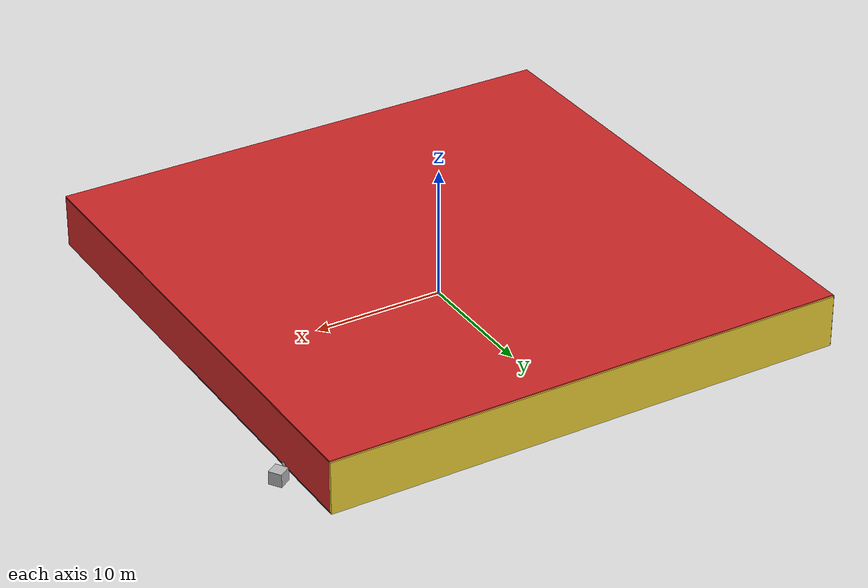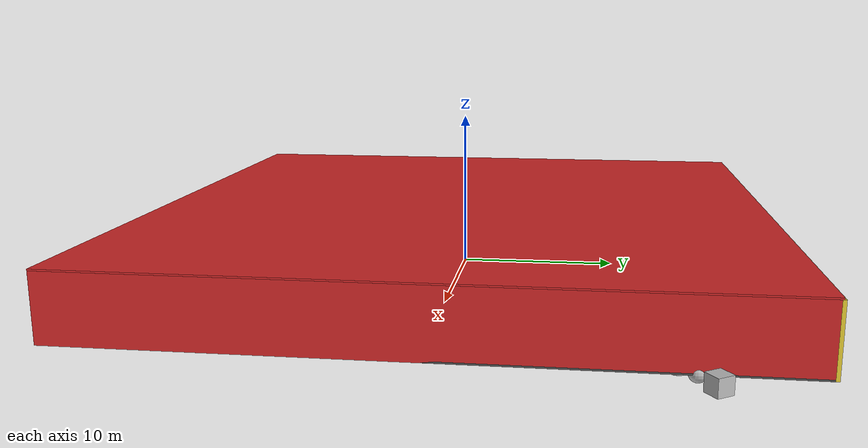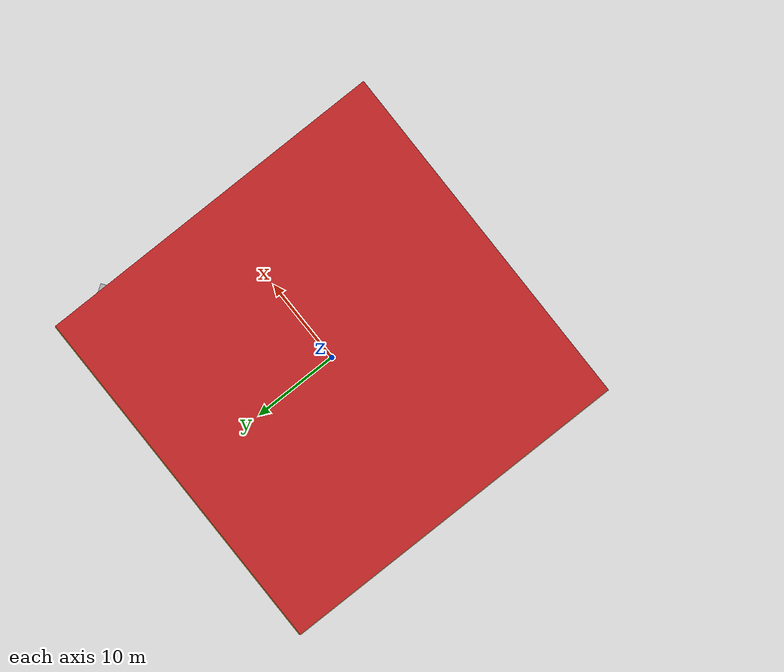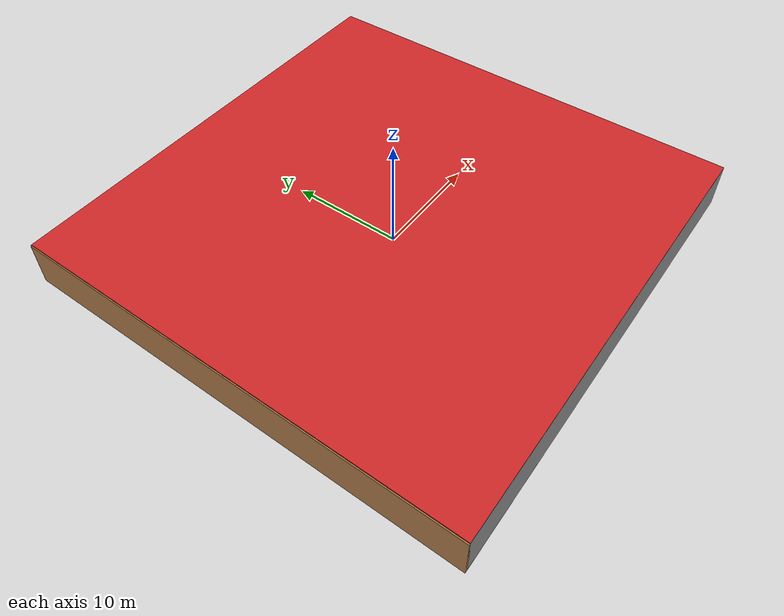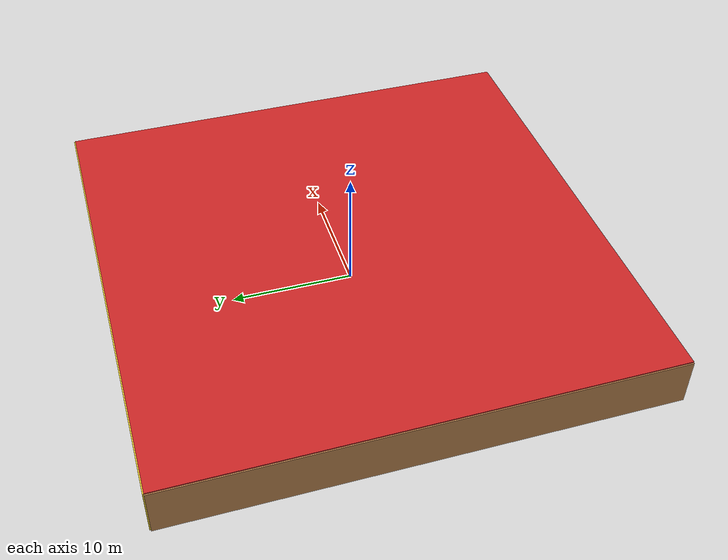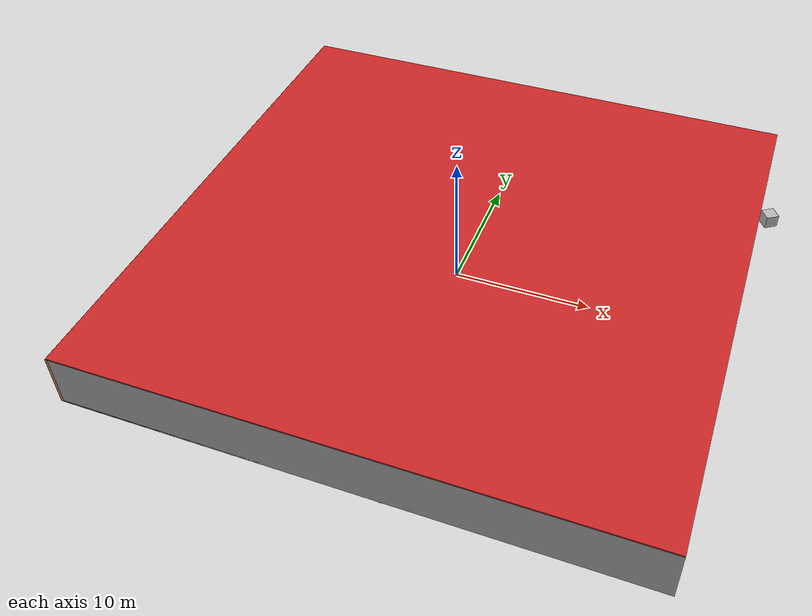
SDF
<sdf version="1.4">
 <world name="default">
  <physics type="ode">
   <max_step_size>0.001</max_step_size>
   <real_time_factor>1</real_time_factor>
   <real_time_update_rate>1000</real_time_update_rate>
   <gravity>0 0 -9.8</gravity>
  </physics>
  <scene><ambient>0.4 0.4 0.4 1</ambient><background>0.7 0.7 0.7 1</background><shadows>1</shadows></scene>
  <model name="Surrounding">
   <static>1</static>
   <link name="Ceiling">
    <collision name="Ceiling_Collision"><geometry><box><size>40 40 0.1</size></box></geometry></collision>
    <visual name="Ceiling_Visual">
     <geometry><box><size>40 40 0.1</size></box></geometry>
     <material>
      <script><uri>file://media/materials/scripts/gazebo.material</uri><name>Gazebo/Red</name></script>
     </material>
    </visual>
    <pose>0 0 4.05 0 0 0</pose>
   </link>
   <link name="Wall_South">
    <collision name="Wall_South_Collision">
     <geometry><box><size>40 0 4</size></box></geometry>
     <pose>0 0 2 0 -0 0</pose>
    </collision>
    <visual name="Wall_South_Visual">
     <pose>0 0 2 0 -0 0</pose>
     <geometry><box><size>40 0 4</size></box></geometry>
     <material>
      <script><uri>file://media/materials/scripts/gazebo.material</uri><name>Gazebo/Grey</name></script>
     </material>
    </visual>
    <velocity_decay><linear>0</linear><angular>0</angular></velocity_decay>
    <pose>0 -20 0 0 -0 0</pose>
   </link>
   <link name="Wall_East">
    <collision name="Wall_21_Collision">
     <geometry><box><size>40 0 4</size></box></geometry>
     <pose>0 0 2 0 -0 0</pose>
    </collision>
    <visual name="Wall_21_Visual">
     <pose>0 0 2 0 -0 0</pose>
     <geometry><box><size>40 0 4</size></box></geometry>
     <material>
      <script><uri>file://media/materials/scripts/gazebo.material</uri><name>Gazebo/Red</name></script>
     </material>
    </visual>
    <velocity_decay><linear>0</linear><angular>0</angular></velocity_decay>
    <pose>20 0 0 0 -0 1.5708</pose>
   </link>
   <link name="Wall_North">
    <collision name="Wall_22_Collision">
     <geometry><box><size>40 0.2 4</size></box></geometry>
     <pose>0 0 2 0 -0 0</pose>
    </collision>
    <visual name="Wall_22_Visual">
     <pose>0 0 2 0 -0 0</pose>
     <geometry><box><size>40 0.2 4</size></box></geometry>
     <material>
      <script><uri>file://media/materials/scripts/gazebo.material</uri><name>Gazebo/ZincYellow</name></script>
     </material>
    </visual>
    <velocity_decay><linear>0</linear><angular>0</angular></velocity_decay>
    <pose>0 20 0 0 -0 0</pose>
   </link>
   <link name="Wall_West">
    <collision name="Wall_23_Collision">
     <geometry><box><size>40 0.2 4</size></box></geometry>
     <pose>0 0 2 0 -0 0</pose>
    </collision>
    <visual name="Wall_23_Visual">
     <pose>0 0 2 0 -0 0</pose>
     <geometry><box><size>40 0.2 4</size></box></geometry>
     <material>
      <script><uri>file://media/materials/scripts/gazebo.material</uri><name>Gazebo/WoodPallet</name></script>
     </material>
    </visual>
    <velocity_decay><linear>0</linear><angular>0</angular></velocity_decay>
    <pose>-20 0 0 0 0 -1.5708</pose>
   </link>
   <link name="Ground_link">
    <collision name="collision">
     <pose>0 0 .05 0 -0 0</pose>
     <geometry><box><size>40 40 0.1</size></box></geometry>
    </collision>
    <visual name="visual">
     <pose>0 0 .05 0 -0 0</pose>
     <geometry><box><size>40 40 0.1</size></box></geometry>
     <material>
      <script><uri>file://media/materials/scripts/gazebo.material</uri><name>Gazebo/Road</name></script>
     </material>
    </visual>
   </link>
   <static>1</static>
  </model>
  <spherical_coordinates>
   <surface_model>EARTH_WGS84</surface_model>
   <latitude_deg>0</latitude_deg>
   <longitude_deg>0</longitude_deg>
   <elevation>0</elevation>
   <heading_deg>0</heading_deg>
  </spherical_coordinates>
  <light name="lightball_0" type="diffuse">
   <diffuse>0.8 0.8 0.8 1</diffuse>
   <specular>0.2 0.2 0.2 1</specular>
   <attenuation>
    <range>100</range>
    <constant>0.7</constant>
    <linear>0.01</linear>
    <quadratic>0.001</quadratic>
   </attenuation>
   <direction>-0.5 0.1 -0.9</direction>
   <pose>-8.93175632863 -6.51236455868 1.19564853777 0 0 0</pose>
  </light>
  <light name="lightball_1" type="diffuse">
   <diffuse>0.8 0.8 0.8 1</diffuse>
   <specular>0.2 0.2 0.2 1</specular>
   <attenuation>
    <range>100</range>
    <constant>0.7</constant>
    <linear>0.01</linear>
    <quadratic>0.001</quadratic>
   </attenuation>
   <direction>-0.5 0.1 -0.9</direction>
   <pose>-6.4656001806 10.3427694176 1.41386955856 0 0 0</pose>
  </light>
  <light name="lightball_2" type="diffuse">
   <diffuse>0.8 0.8 0.8 1</diffuse>
   <specular>0.2 0.2 0.2 1</specular>
   <attenuation>
    <range>100</range>
    <constant>0.7</constant>
    <linear>0.01</linear>
    <quadratic>0.001</quadratic>
   </attenuation>
   <direction>-0.5 0.1 -0.9</direction>
   <pose>-7.67105661088 11.6054199089 1.47156718742 0 0 0</pose>
  </light>
  <include><uri>model://cabinet</uri><pose>-17.9928666811 -1.73754663496 0 0 0 1.10820452706</pose></include>
  <include><uri>model://table</uri><pose>-17.4356927247 18.6629898624 0 0 0 1.04156478076</pose></include>
  <include>
   <uri>model://robocup_3Dsim_goal</uri>
   <pose>-13.7382426492 -5.71614135599 0 0 0 3.00202062629</pose>
  </include>
  <include>
   <uri>model://construction_cone</uri>
   <pose>-15.3057659443 18.7159807536 0 0 0 0.995997769177</pose>
  </include>
  <include>
   <uri>model://robocup_3Dsim_goal</uri>
   <pose>-10.8588459948 -17.5991260282 0 0 0 1.58724976295</pose>
  </include>
  <include>
   <uri>model://textured_shapes</uri>
   <pose>-12.3452593412 4.23191643096 0 0 0 3.03464069919</pose>
  </include>
  <include><uri>model://cabinet</uri><pose>-8.84420162715 -12.4810066679 0 0 0 0.859580768901</pose></include>
  <include><uri>model://cabinet</uri><pose>-7.81532658205 14.8697376725 0 0 0 2.83205318122</pose></include>
  <include><uri>model://table</uri><pose>-5.91933464434 -16.6741266893 0 0 0 2.41984564452</pose></include>
  <include>
   <uri>model://construction_cone</uri>
   <pose>-4.74177994157 10.365599541 0 0 0 0.226823021327</pose>
  </include>
  <include>
   <uri>model://construction_cone</uri>
   <pose>-3.37501785975 -17.7194362832 0 0 0 2.7912728874</pose>
  </include>
  <include>
   <uri>model://robocup_3Dsim_goal</uri>
   <pose>-1.50427281295 -11.8676932359 0 0 0 1.8043515596</pose>
  </include>
  <include><uri>model://cabinet</uri><pose>-1.361990455 -3.34764548184 0 0 0 0.00506881820127</pose></include>
  <include>
   <uri>model://construction_cone</uri>
   <pose>-0.406815109774 -2.51439863675 0 0 0 1.39676367803</pose>
  </include>
  <include><uri>model://cabinet</uri><pose>-0.46432551783 3.95175312677 0 0 0 2.61094556577</pose></include>
  <include>
   <uri>model://textured_shapes</uri>
   <pose>2.58654642811 -17.7681783387 0 0 0 2.9391976763</pose>
  </include>
  <include>
   <uri>model://robocup_3Dsim_goal</uri>
   <pose>4.46970332986 -14.154463994 0 0 0 1.98408232067</pose>
  </include>
  <include>
   <uri>model://robocup_3Dsim_goal</uri>
   <pose>3.92345761579 5.60539416037 0 0 0 0.770946588509</pose>
  </include>
  <include><uri>model://table</uri><pose>8.43449866445 18.7110863329 0 0 0 2.99403344856</pose></include>
  <include>
   <uri>model://construction_cone</uri>
   <pose>15.7456289163 -11.6936715604 0 0 0 2.14305959293</pose>
  </include>
  <include><uri>model://cabinet</uri><pose>18.2307126237 -5.63935209733 0 0 0 2.91045343634</pose></include>
  <include>
   <uri>model://textured_shapes</uri>
   <pose>19.5965368479 13.6588767587 0 0 0 2.15590552712</pose>
  </include>
 </world>
</sdf>

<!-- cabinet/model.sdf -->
<sdf version="1.5">
  <model name="cabinet">
    <static>true</static>
    <link name="cabinet_bottom_plate">
      <inertial>
        <pose>0 0 -1 0 0 0</pose>
        <inertia>
          <ixx>2.050000</ixx>
          <ixy>0</ixy>
          <ixz>0</ixz>
          <iyy>2.050000</iyy>
          <iyz>0</iyz>
          <izz>2.050000</izz>
        </inertia>
        <mass>25.000000</mass>
      </inertial>
      <collision name="cabinet_bottom_plate_geom">
        <pose>0 0 0.010000 0 0 0</pose>
        <geometry>
          <box>
            <size>0.450000 0.450000 0.020000</size>
          </box>
        </geometry>
      </collision>
      <visual name="cabinet_bottom_plate_geom_visual">
        <pose>0 0 0.010000 0 0 0</pose>
        <geometry>
          <box>
            <size>0.450000 0.450000 0.020000</size>
          </box>
        </geometry>
        <material>
          <script>
            <uri>model://media/materials/scripts/gazebo.material</uri>
            <name>Gazebo/Wood</name>
          </script>
        </material>
      </visual>
      <collision name="cabinet_bottom_plate_geom_cabinet_back_plate">
        <pose>0.235000 0 0.510000 0 0 0</pose>
        <geometry>
          <box>
            <size>0.020000 0.450000 1.020000</size>
          </box>
        </geometry>
      </collision>
      <visual name="cabinet_bottom_plate_geom_cabinet_back_plate_visual">
        <pose>0.235000 0 0.510000 0 0 0</pose>
        <geometry>
          <box>
            <size>0.020000 0.450000 1.020000</size>
          </box>
        </geometry>
        <material>
          <script>
            <uri>model://media/materials/scripts/gazebo.material</uri>
            <name>Gazebo/Wood</name>
          </script>
        </material>
      </visual>
      <collision name="cabinet_bottom_plate_geom_cabinet_left_plate">
        <pose>0 0.235000 0.510000 0 0 0</pose>
        <geometry>
          <box>
            <size>0.450000 0.020000 1.020000</size>
          </box>
        </geometry>
      </collision>
      <visual name="cabinet_bottom_plate_geom_cabinet_left_plate_visual">
        <pose>0 0.235000 0.510000 0 0 0</pose>
        <geometry>
          <box>
            <size>0.450000 0.020000 1.020000</size>
          </box>
        </geometry>
        <material>
          <script>
            <uri>model://media/materials/scripts/gazebo.material</uri>
            <name>Gazebo/Wood</name>
          </script>
        </material>
      </visual>
      <collision name="cabinet_bottom_plate_geom_cabinet_middle_plate">
        <pose>0 0 0.510000 0 0 0</pose>
        <geometry>
          <box>
            <size>0.450000 0.450000 0.020000</size>
          </box>
        </geometry>
      </collision>
      <visual name="cabinet_bottom_plate_geom_cabinet_middle_plate_visual">
        <pose>0 0 0.510000 0 0 0</pose>
        <geometry>
          <box>
            <size>0.450000 0.450000 0.020000</size>
          </box>
        </geometry>
        <material>
          <script>
            <uri>model://media/materials/scripts/gazebo.material</uri>
            <name>Gazebo/Wood</name>
          </script>
        </material>
      </visual>
      <collision name="cabinet_bottom_plate_geom_cabinet_right_plate">
        <pose>0 -0.235000 0.510000 0 0 0</pose>
        <geometry>
          <box>
            <size>0.450000 0.020000 1.020000</size>
          </box>
        </geometry>
      </collision>
      <visual name="cabinet_bottom_plate_geom_cabinet_right_plate_visual">
        <pose>0 -0.235000 0.510000 0 0 0</pose>
        <geometry>
          <box>
            <size>0.450000 0.020000 1.020000</size>
          </box>
        </geometry>
        <material>
          <script>
            <uri>model://media/materials/scripts/gazebo.material</uri>
            <name>Gazebo/Wood</name>
          </script>
        </material>
      </visual>
      <collision name="cabinet_bottom_plate_geom_cabinet_top_plate">
        <pose>0 0 1.010000 0 0 0</pose>
        <geometry>
          <box>
            <size>0.450000 0.450000 0.020000</size>
          </box>
        </geometry>
      </collision>
      <visual name="cabinet_bottom_plate_geom_cabinet_top_plate_visual">
        <pose>0 0 1.010000 0 0 0</pose>
        <geometry>
          <box>
            <size>0.450000 0.450000 0.020000</size>
          </box>
        </geometry>
        <material>
          <script>
            <uri>model://media/materials/scripts/gazebo.material</uri>
            <name>Gazebo/Wood</name>
          </script>
        </material>
      </visual>
    </link>
  </model>
</sdf>

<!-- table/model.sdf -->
<sdf version="1.5">
  <model name="table">
    <static>true</static>
    <link name="link">
      <collision name="surface">
        <pose>0 0 1.0 0 0 0</pose>
        <geometry>
          <box>
            <size>1.5 0.8 0.03</size>
          </box>
        </geometry>
        <surface>
          <friction>
            <ode>
              <mu>0.6</mu>
              <mu2>0.6</mu2>
            </ode>
          </friction>
        </surface>
      </collision>
      <visual name="visual1">
        <pose>0 0 1.0 0 0 0</pose>
        <geometry>
          <box>
            <size>1.5 0.8 0.03</size>
          </box>
        </geometry>
        <material>
          <script>
            <uri>model://media/materials/scripts/gazebo.material</uri>
            <name>Gazebo/Wood</name>
          </script>
        </material>
      </visual>
      <collision name="front_left_leg">
        <pose>0.68 0.38 0.5 0 0 0</pose>
        <geometry>
          <cylinder>
            <radius>0.02</radius>
            <length>1.0</length>
          </cylinder>
        </geometry>
      </collision>
      <visual name="front_left_leg">
        <pose>0.68 0.38 0.5 0 0 0</pose>
        <geometry>
          <cylinder>
            <radius>0.02</radius>
            <length>1.0</length>
          </cylinder>
        </geometry>
        <material>
          <script>
            <uri>model://media/materials/scripts/gazebo.material</uri>
            <name>Gazebo/Grey</name>
          </script>
        </material>
      </visual>
      <collision name="front_right_leg">
        <pose>0.68 -0.38 0.5 0 0 0</pose>
        <geometry>
          <cylinder>
            <radius>0.02</radius>
            <length>1.0</length>
          </cylinder>
        </geometry>
      </collision>
      <visual name="front_right_leg">
        <pose>0.68 -0.38 0.5 0 0 0</pose>
        <geometry>
          <cylinder>
            <radius>0.02</radius>
            <length>1.0</length>
          </cylinder>
        </geometry>
        <material>
          <script>
            <uri>model://media/materials/scripts/gazebo.material</uri>
            <name>Gazebo/Grey</name>
          </script>
        </material>
      </visual>
      <collision name="back_right_leg">
        <pose>-0.68 -0.38 0.5 0 0 0</pose>
        <geometry>
          <cylinder>
            <radius>0.02</radius>
            <length>1.0</length>
          </cylinder>
        </geometry>
      </collision>
      <visual name="back_right_leg">
        <pose>-0.68 -0.38 0.5 0 0 0</pose>
        <geometry>
          <cylinder>
            <radius>0.02</radius>
            <length>1.0</length>
          </cylinder>
        </geometry>
        <material>
          <script>
            <uri>model://media/materials/scripts/gazebo.material</uri>
            <name>Gazebo/Grey</name>
          </script>
        </material>
      </visual>
      <collision name="back_left_leg">
        <pose>-0.68 0.38 0.5 0 0 0</pose>
        <geometry>
          <cylinder>
            <radius>0.02</radius>
            <length>1.0</length>
          </cylinder>
        </geometry>
      </collision>
      <visual name="back_left_leg">
        <pose>-0.68 0.38 0.5 0 0 0</pose>
        <geometry>
          <cylinder>
            <radius>0.02</radius>
            <length>1.0</length>
          </cylinder>
        </geometry>
        <material>
          <script>
            <uri>model://media/materials/scripts/gazebo.material</uri>
            <name>Gazebo/Grey</name>
          </script>
        </material>
      </visual>
    </link>
  </model>
</sdf>

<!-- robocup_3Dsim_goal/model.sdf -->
<sdf version="1.5">
  <model name="robocup_3d_goal">
    <static>true</static>
    <link name="left_post">
      <pose>0 1.05 0.45 0 0 0</pose>
      <collision name="collision">
        <geometry>
          <cylinder>
            <radius>0.05</radius>
            <length>0.9</length>
          </cylinder>
        </geometry>
      </collision>
      <visual name="visual">
        <geometry>
          <cylinder>
            <radius>0.05</radius>
            <length>0.9</length>
          </cylinder>
        </geometry>
        <material>
          <script>
            <uri>file://media/materials/scripts/gazebo.material</uri>
            <name>Gazebo/ZincYellow</name>
          </script>
        </material>
      </visual>
    </link>
    <link name="left_support_horiz_lower">
      <pose>0.30 1.05 0.01 0 0 0</pose>
      <collision name="collision">
        <geometry>
          <box>
            <size>0.50 0.02 0.02</size>
          </box>
        </geometry>
      </collision>
      <visual name="visual">
        <geometry>
          <box>
            <size>0.50 0.02 0.02</size>
          </box>
        </geometry>
        <material>
          <script>
            <uri>file://media/materials/scripts/gazebo.material</uri>
            <name>Gazebo/White</name>
          </script>
        </material>
      </visual>
    </link>
    <link name="left_support_horiz_upper">
      <pose>0.30 1.05 0.79 0 0 0</pose>
      <collision name="collision">
        <geometry>
          <box>
            <size>0.50 0.02 0.02</size>
          </box>
        </geometry>
      </collision>
      <visual name="visual">
        <geometry>
          <box>
            <size>0.50 0.02 0.02</size>
          </box>
        </geometry>
        <material>
          <script>
            <uri>file://media/materials/scripts/gazebo.material</uri>
            <name>Gazebo/White</name>
          </script>
        </material>
      </visual>
    </link>
    <link name="left_support_vertical">
      <pose>0.56 1.05 0.4 0 1.5708 0</pose>
      <collision name="collision">
        <geometry>
          <box>
            <size>0.80 0.02 0.02</size>
          </box>
        </geometry>
      </collision>
      <visual name="visual">
        <geometry>
          <box>
            <size>0.80 0.02 0.02</size>
          </box>
        </geometry>
        <material>
          <script>
            <uri>file://media/materials/scripts/gazebo.material</uri>
            <name>Gazebo/White</name>
          </script>
        </material>
      </visual>
    </link>
    <link name="right_support_horiz_lower">
      <pose>0.30 -1.05 0.01 0 0 0</pose>
      <collision name="collision">
        <geometry>
          <box>
            <size>0.50 0.02 0.02</size>
          </box>
        </geometry>
      </collision>
      <visual name="visual">
        <geometry>
          <box>
            <size>0.50 0.02 0.02</size>
          </box>
        </geometry>
        <material>
          <script>
            <uri>file://media/materials/scripts/gazebo.material</uri>
            <name>Gazebo/White</name>
          </script>
        </material>
      </visual>
    </link>
    <link name="right_support_horiz_upper">
      <pose>0.30 -1.05 0.79 0 0 0</pose>
      <collision name="collision">
        <geometry>
          <box>
            <size>0.50 0.02 0.02</size>
          </box>
        </geometry>
      </collision>
      <visual name="visual">
        <geometry>
          <box>
            <size>0.50 0.02 0.02</size>
          </box>
        </geometry>
        <material>
          <script>
            <uri>file://media/materials/scripts/gazebo.material</uri>
            <name>Gazebo/White</name>
          </script>
        </material>
      </visual>
    </link>
    <link name="right_support_vertical">
      <pose>0.56 -1.05 0.4 0 1.5708 0</pose>
      <collision name="collision">
        <geometry>
          <box>
            <size>0.80 0.02 0.02</size>
          </box>
        </geometry>
      </collision>
      <visual name="visual">
        <geometry>
          <box>
            <size>0.80 0.02 0.02</size>
          </box>
        </geometry>
        <material>
          <script>
            <uri>file://media/materials/scripts/gazebo.material</uri>
            <name>Gazebo/White</name>
          </script>
        </material>
      </visual>
    </link>
    <link name="center_support_horiz_lower">
      <pose>0.56 0 0.01 0 1.5708 0</pose>
      <collision name="collision">
        <geometry>
          <box>
            <size>0.02 2.08 0.02</size>
          </box>
        </geometry>
      </collision>
      <visual name="visual">
        <geometry>
          <box>
            <size>0.02 2.08 0.02</size>
          </box>
        </geometry>
        <material>
          <script>
            <uri>file://media/materials/scripts/gazebo.material</uri>
            <name>Gazebo/White</name>
          </script>
        </material>
      </visual>
    </link>
    <link name="center_support_horiz_upper">
      <pose>0.56 0 0.79 0 1.5708 0</pose>
      <collision name="collision">
        <geometry>
          <box>
            <size>0.02 2.08 0.02</size>
          </box>
        </geometry>
      </collision>
      <visual name="visual">
        <geometry>
          <box>
            <size>0.02 2.08 0.02</size>
          </box>
        </geometry>
        <material>
          <script>
            <uri>file://media/materials/scripts/gazebo.material</uri>
            <name>Gazebo/White</name>
          </script>
        </material>
      </visual>
    </link>
    <link name="right_post">
      <pose>0 -1.05 0.45 0 0 0</pose>
      <collision name="collision">
        <geometry>
          <cylinder>
            <radius>0.05</radius>
            <length>0.9</length>
          </cylinder>
        </geometry>
      </collision>
      <visual name="visual">
        <geometry>
          <cylinder>
            <radius>0.05</radius>
            <length>0.9</length>
          </cylinder>
        </geometry>
        <material>
          <script>
            <uri>file://media/materials/scripts/gazebo.material</uri>
            <name>Gazebo/ZincYellow</name>
          </script>
        </material>
      </visual>
    </link>
    <link name="crossbar">
      <pose>0 0 0.85 1.57 1.57 0</pose>
      <collision name="collision">
        <geometry>
          <cylinder>
            <radius>0.05</radius>
            <length>2.0</length>
          </cylinder>
        </geometry>
      </collision>
      <visual name="visual">
        <geometry>
          <cylinder>
            <radius>0.05</radius>
            <length>2.0</length>
          </cylinder>
        </geometry>
        <material>
          <script>
            <uri>file://media/materials/scripts/gazebo.material</uri>
            <name>Gazebo/ZincYellow</name>
          </script>
        </material>
      </visual>
    </link>
    <link name="center_net">
      <pose>0.56 0 0.40 0 0 0</pose>
      <collision name="collision">
        <geometry>
          <box>
            <size>0.01 2.1 0.80</size>
          </box>
        </geometry>
      </collision>
      <visual name="visual">
        <geometry>
          <box>
            <size>0.01 2.1 0.80</size>
          </box>
        </geometry>
        <material>
          <script>
            <uri>model://../model_source/models/robocup09_spl_field/materials/scripts/</uri>
            <uri>model://../model_source/models/robocup09_spl_field/materials/textures/</uri>
            <name>RoboCup/Net</name>
          </script>
        </material>
      </visual>
    </link>
    <link name="left_net">
      <pose>0.30 1.05 0.40 0 0 0</pose>
      <collision name="collision">
        <geometry>
          <box>
            <size>0.50 0.01 0.76</size>
          </box>
        </geometry>
      </collision>
      <visual name="visual">
        <geometry>
          <box>
            <size>0.50 0.01 0.76</size>
          </box>
        </geometry>
        <material>
          <script>
            <uri>model://../model_source/models/robocup09_spl_field/materials/scripts/</uri>
            <uri>model://../model_source/models/robocup09_spl_field/materials/textures/</uri>
            <name>RoboCup/Net</name>
          </script>
        </material>
      </visual>
    </link>
    <link name="right_net">
      <pose>0.30 -1.05 0.40 0 0 0</pose>
      <collision name="collision">
        <geometry>
          <box>
            <size>0.50 0.01 0.76</size>
          </box>
        </geometry>
      </collision>
      <visual name="visual">
        <geometry>
          <box>
            <size>0.50 0.01 0.76</size>
          </box>
        </geometry>
        <material>
          <script>
            <uri>model://../model_source/models/robocup09_spl_field/materials/scripts/</uri>
            <uri>model://../model_source/models/robocup09_spl_field/materials/textures/</uri>
            <name>RoboCup/Net</name>
          </script>
        </material>
      </visual>
    </link>
  </model>
</sdf>

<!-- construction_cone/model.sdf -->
<sdf version="1.5">
  <model name="Construction Cone">
    <link name="link">
      <collision name="collision">
        <geometry>
          <mesh>
            <scale>10 10 10</scale>
            <uri>file://isr-testbed/construction_cone/meshes/construction_cone.dae</uri>
          </mesh>
        </geometry>
      </collision>
      <visual name="visual">
        <geometry>
          <mesh>
            <scale>10 10 10</scale>
            <uri>file://isr-testbed/construction_cone/meshes/construction_cone.dae</uri>
          </mesh>
        </geometry>
      </visual>
    </link>
  </model>
</sdf>

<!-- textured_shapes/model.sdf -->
<sdf version="1.6">
  <model name="textured_shapes">
    <pose>0 0 0.5 0 0 0</pose>
    <link name="box">
      <pose>0 -1.5 0 0 0 0</pose>
      <collision name="collision">
        <geometry>
          <box>
            <size>1 1 1</size>
          </box>
        </geometry>
      </collision>
      <visual name="visual">
        <geometry>
          <box>
            <size>1 1 1</size>
          </box>
        </geometry>
        <material>
          <script>
            <uri>model://../model_source/models/textured_shapes/materials/scripts</uri>
            <uri>model://../model_source/models/textured_shapes/materials/textures</uri>
            <name>TexturedShape/Squares</name>
          </script>
        </material>
      </visual>
    </link>
    <link name="sphere">
      <collision name="collision">
        <geometry>
          <sphere>
            <radius>0.5</radius>
          </sphere>
        </geometry>
      </collision>
      <visual name="visual">
        <geometry>
          <sphere>
            <radius>0.5</radius>
          </sphere>
        </geometry>
        <material>
          <script>
            <uri>model://../model_source/models/textured_shapes/materials/scripts</uri>
            <uri>model://../model_source/models/textured_shapes/materials/textures</uri>
            <name>TexturedShape/Squares</name>
          </script>
        </material>
      </visual>
    </link>
    <link name="cylinder">
      <pose>0 1.5 0 0 0 0</pose>
      <collision name="collision">
        <geometry>
          <cylinder>
            <radius>0.5</radius>
            <length>1</length>
          </cylinder>
        </geometry>
      </collision>
      <visual name="visual">
        <geometry>
          <cylinder>
            <radius>0.5</radius>
            <length>1</length>
          </cylinder>
        </geometry>
        <material>
          <script>
            <uri>model://../model_source/models/textured_shapes/materials/scripts</uri>
            <uri>model://../model_source/models/textured_shapes/materials/textures</uri>
            <name>TexturedShape/Squares</name>
          </script>
        </material>
      </visual>
    </link>
  </model>
</sdf>
